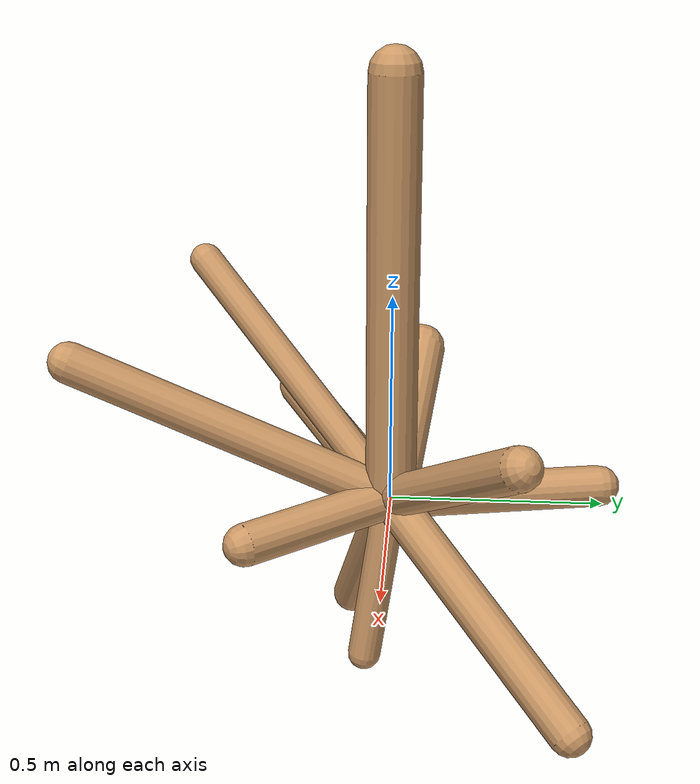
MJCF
<!--
                    joint_number: 10
                    -->
                    <mujoco model="randomrobot">
                        <compiler angle="degree" coordinate="global" inertiafromgeom="true"/>
                        <default>
                        <joint armature="0.01" damping=".1" limited="true"/>
                        <geom conaffinity="0" condim="3" contype="1" density="1000" friction="0.8 .1 .1" rgba="0.8 0.6 .4 1"/>
                        </default>
                        <option integrator="RK4" timestep="0.002"/>
                        <worldbody>
                    <body name='torso' pos='0.00 0.00 0.74'><geom fromto='0 0 0 0.00 0.00 1.00' name='torso_geom' size='0.06' type='capsule'/><inertial mass='0.3'/><body name='L0_D1' pos='0.00 0.00 0.36'><joint axis='0 1 0' name='L0_D1_joint' pos='0 0 0' range='79.69 138.30' type='hinge'/><geom fromto='0 0 0 -0.41 -0.26 0.12' name='L0_D1_geom' size='0.05' type='capsule'/><inertial mass='0.3'/><body name='L1_D0' pos='-0.40 -0.26 0.12'><joint axis='0 1 0' name='L1_D0_joint' pos='0 0 0' range='75.25 160.91' type='hinge'/><geom fromto='0 0 0 0.02 -0.75 0.33' name='L1_D0_geom' size='0.05' type='capsule'/><inertial mass='0.3'/></body><body name='L2_D0' pos='-0.03 -0.02 0.01'><joint axis='0 1 0' name='L2_D0_joint' pos='0 0 0' range='28.29 150.26' type='hinge'/><geom fromto='0 0 0 -0.10 0.50 0.00' name='L2_D0_geom' size='0.05' type='capsule'/><inertial mass='0.3'/></body><body name='L3_D0' pos='-0.36 -0.23 0.11'><joint axis='1 0 0' name='L3_D0_joint' pos='0 0 0' range='47.53 73.80' type='hinge'/><geom fromto='0 0 0 -0.34 0.06 0.26' name='L3_D0_geom' size='0.06' type='capsule'/><inertial mass='0.3'/></body></body><body name='L4_D1' pos='0.00 0.00 0.67'><joint axis='0 1 0' name='L4_D1_joint' pos='0 0 0' range='14.45 153.72' type='hinge'/><geom fromto='0 0 0 -0.34 -0.48 0.48' name='L4_D1_geom' size='0.04' type='capsule'/><inertial mass='0.3'/><body name='L5_D0' pos='-0.15 -0.21 0.22'><joint axis='0 1 0' name='L5_D0_joint' pos='0 0 0' range='123.28 157.55' type='hinge'/><geom fromto='0 0 0 0.39 0.28 0.26' name='L5_D0_geom' size='0.05' type='capsule'/><inertial mass='0.3'/></body><body name='L6_D0' pos='-0.29 -0.40 0.40'><joint axis='0 1 0' name='L6_D0_joint' pos='0 0 0' range='25.16 115.72' type='hinge'/><geom fromto='0 0 0 -0.30 -0.11 -0.43' name='L6_D0_geom' size='0.05' type='capsule'/><inertial mass='0.3'/></body><body name='L7_D0' pos='-0.34 -0.47 0.47'><joint axis='0 1 0' name='L7_D0_joint' pos='0 0 0' range='77.19 93.99' type='hinge'/><geom fromto='0 0 0 0.38 0.42 -0.39' name='L7_D0_geom' size='0.05' type='capsule'/><inertial mass='0.3'/></body></body><body name='L8_D1' pos='0.00 0.00 0.28'><joint axis='0 0 1' name='L8_D1_joint' pos='0 0 0' range='34.96 55.88' type='hinge'/><geom fromto='0 0 0 0.23 -0.32 -0.02' name='L8_D1_geom' size='0.05' type='capsule'/><inertial mass='0.3'/><body name='L9_D0' pos='0.06 -0.08 -0.00'><joint axis='0 1 0' name='L9_D0_joint' pos='0 0 0' range='118.14 173.05' type='hinge'/><geom fromto='0 0 0 0.02 -0.06 -0.42' name='L9_D0_geom' size='0.04' type='capsule'/><inertial mass='0.3'/></body></body></body>
                        </worldbody>
                    </mujoco>
